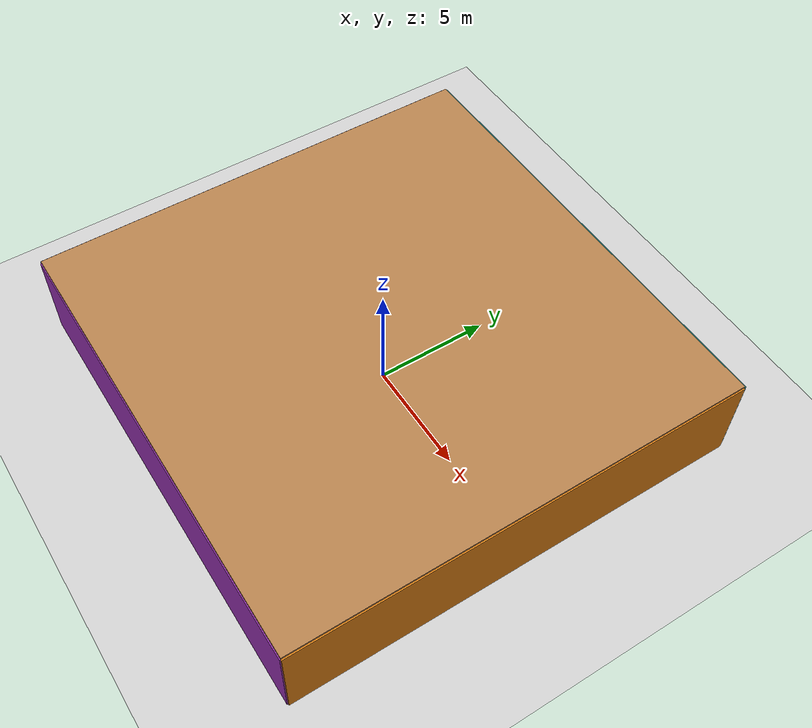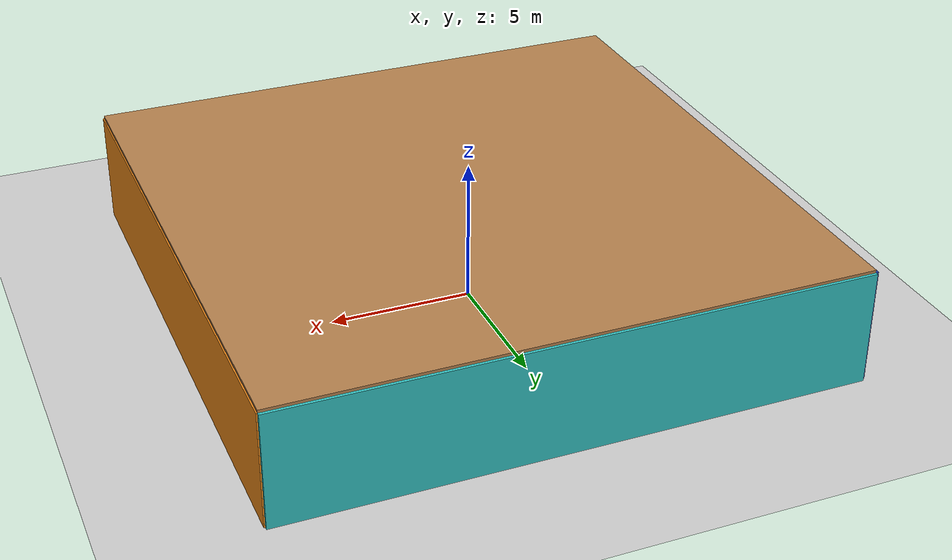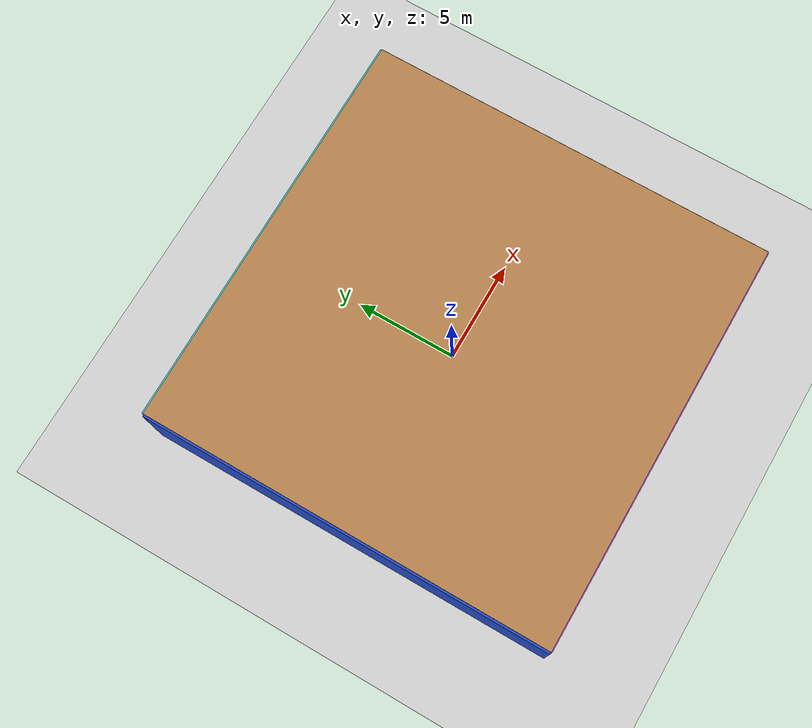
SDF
<sdf version="1.6">
 <world name="default">
  <light name="sun" type="directional">
   <pose>0 0 10 0 -0 0</pose>
   <diffuse>0.8 0.8 0.8 1</diffuse>
   <specular>0.2 0.2 0.2 1</specular>
   <attenuation>
    <range>1000</range>
    <constant>0.9</constant>
    <linear>0.01</linear>
    <quadratic>0.001</quadratic>
   </attenuation>
   <direction>-0.5 0.1 -0.9</direction>
  </light>
  <model name="ground_plane">
   <static>1</static>
   <link name="link">
    <collision name="collision">
     <geometry><plane><normal>0 0 1</normal><size>100 100</size></plane></geometry>
     <surface><friction><ode><mu>100</mu><mu2>50</mu2></ode></friction></surface>
    </collision>
    <visual name="visual">
     <cast_shadows>0</cast_shadows>
     <geometry><plane><normal>0 0 1</normal><size>100 100</size></plane></geometry>
     <material>
      <script><uri>file://media/materials/scripts/gazebo.material</uri><name>Gazebo/Grey</name></script>
     </material>
    </visual>
   </link>
  </model>
  <gravity>0 0 -9.8</gravity>
  <magnetic_field>6e-06 2.3e-05 -4.2e-05</magnetic_field>
  <atmosphere type="adiabatic"/>
  <physics default="0" name="default_physics" type="ode">
   <max_step_size>0.001</max_step_size>
   <real_time_factor>1</real_time_factor>
   <real_time_update_rate>1000</real_time_update_rate>
  </physics>
  <scene><ambient>0.4 0.4 0.4 1</ambient><background>0.7 0.7 0.7 1</background><shadows>1</shadows></scene>
  <spherical_coordinates>
   <surface_model>EARTH_WGS84</surface_model>
   <latitude_deg>0</latitude_deg>
   <longitude_deg>0</longitude_deg>
   <elevation>0</elevation>
   <heading_deg>0</heading_deg>
  </spherical_coordinates>
  <model name="four_walls">
   <static>1</static>
   <link name="Ceiling">
    <collision name="Ceiling_Collision"><geometry><box><size>20 20 0.1</size></box></geometry></collision>
    <visual name="Ceiling_Visual">
     <geometry><box><size>20 20 0.1</size></box></geometry>
     <material>
      <script><uri>file://media/materials/scripts/gazebo.material</uri><name>Gazebo/WoodPallet</name></script>
     </material>
    </visual>
    <pose>0 0 4.05 0 -0 0</pose>
   </link>
   <link name="Wall_South">
    <collision name="Wall_South_Collision">
     <geometry><box><size>20 0.1 4</size></box></geometry>
     <pose>0 0 2 0 -0 0</pose>
    </collision>
    <visual name="Wall_South_Visual">
     <pose>0 0 2 0 -0 0</pose>
     <geometry><box><size>20 0.1 4</size></box></geometry>
     <material>
      <script><uri>file://media/materials/scripts/gazebo.material</uri><name>Gazebo/Purple</name></script>
     </material>
    </visual>
    <velocity_decay><linear>0</linear><angular>0</angular></velocity_decay>
    <pose>0 -10 0 0 -0 0</pose>
   </link>
   <link name="Wall_East">
    <collision name="Wall_21_Collision">
     <geometry><box><size>20 0.1 4</size></box></geometry>
     <pose>0 0 2 0 -0 0</pose>
    </collision>
    <visual name="Wall_21_Visual">
     <pose>0 0 2 0 -0 0</pose>
     <geometry><box><size>20 0.1 4</size></box></geometry>
     <material>
      <script><uri>file://media/materials/scripts/gazebo.material</uri><name>Gazebo/Orange</name></script>
     </material>
    </visual>
    <velocity_decay><linear>0</linear><angular>0</angular></velocity_decay>
    <pose>10 0 0 0 -0 1.5708</pose>
   </link>
   <link name="Wall_North">
    <collision name="Wall_22_Collision">
     <geometry><box><size>20 0.2 4</size></box></geometry>
     <pose>0 0 2 0 -0 0</pose>
    </collision>
    <visual name="Wall_22_Visual">
     <pose>0 0 2 0 -0 0</pose>
     <geometry><box><size>20 0.2 4</size></box></geometry>
     <material>
      <script><uri>file://media/materials/scripts/gazebo.material</uri><name>Gazebo/Turquoise</name></script>
     </material>
    </visual>
    <velocity_decay><linear>0</linear><angular>0</angular></velocity_decay>
    <pose>0 10 0 0 -0 0</pose>
   </link>
   <link name="Wall_West">
    <collision name="Wall_23_Collision">
     <geometry><box><size>20 0.2 4</size></box></geometry>
     <pose>0 0 2 0 -0 0</pose>
    </collision>
    <visual name="Wall_23_Visual">
     <pose>0 0 2 0 -0 0</pose>
     <geometry><box><size>20 0.2 4</size></box></geometry>
     <material>
      <script><uri>file://media/materials/scripts/gazebo.material</uri><name>Gazebo/BlueLaser</name></script>
     </material>
    </visual>
    <velocity_decay><linear>0</linear><angular>0</angular></velocity_decay>
    <pose>-10 0 0 0 0 -1.5708</pose>
   </link>
   <link name="Ground_link">
    <collision name="collision">
     <pose>0 0 0.05 0 -0 0</pose>
     <geometry><box><size>20 20 0.1</size></box></geometry>
    </collision>
    <visual name="visual">
     <pose>0 0 0.05 0 -0 0</pose>
     <geometry><box><size>20 20 0.1</size></box></geometry>
     <material>
      <script><uri>file://media/materials/scripts/gazebo.material</uri><name>Gazebo/Grey</name></script>
     </material>
    </visual>
   </link>
   <pose>0.205996 -0.361878 0 0 -0 0</pose>
  </model>
  <include>
   <uri>model://textured_shapes_sphere</uri>
   <pose>-3.91149009671 5.16953617909 0 0 0 0.0863411250527</pose>
  </include>
  <include>
   <uri>model://textured_shapes_box</uri>
   <pose>-4.17009712525 8.09758665378 0 0 0 1.21327490925</pose>
  </include>
  <include>
   <uri>model://textured_shapes_box</uri>
   <pose>1.81115117467 -3.80428059594 0 0 0 2.25353579195</pose>
  </include>
  <include>
   <uri>model://textured_shapes_box</uri>
   <pose>2.00130972732 5.14467931977 0 0 0 2.17955378845</pose>
  </include>
  <include>
   <uri>model://textured_shapes_cylinder</uri>
   <pose>5.1880506685 -7.12017680698 0 0 0 2.60669469122</pose>
  </include>
  <include>
   <uri>model://textured_shapes_sphere</uri>
   <pose>4.9117711145 -3.92702717959 0 0 0 1.24681422696</pose>
  </include>
  <include>
   <uri>model://textured_shapes_box</uri>
   <pose>8.05011631739 -6.88007552723 0 0 0 0.417150929708</pose>
  </include>
  <include>
   <uri>model://textured_shapes_box</uri>
   <pose>7.95543476987 5.00330177312 0 0 0 0.571126932507</pose>
  </include>
 </world>
</sdf>

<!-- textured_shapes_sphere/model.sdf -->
<sdf version="1.6">
  <model name="textured_shapes">
    <pose>0 0 0.5 0 0 0</pose>
    <link name="sphere">
      <collision name="collision">
        <geometry>
          <sphere>
            <radius>0.5</radius>
          </sphere>
        </geometry>
      </collision>
      <visual name="visual">
        <geometry>
          <sphere>
            <radius>0.5</radius>
          </sphere>
        </geometry>
        <material>
          <script>
            <uri>model://textured_shapes/materials/scripts</uri>
            <uri>model://textured_shapes/materials/textures</uri>
            <name>TexturedShape/Squares</name>
          </script>
        </material>
      </visual>
    </link>
  </model>
</sdf>

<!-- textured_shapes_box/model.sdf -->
<sdf version="1.6">
  <model name="textured_shapes">
    <pose>0 0 0.5 0 0 0</pose>
    <link name="box">
      <pose>0 -1.5 0 0 0 0</pose>
      <collision name="collision">
        <geometry>
          <box>
            <size>1 1 1</size>
          </box>
        </geometry>
      </collision>
      <visual name="visual">
        <geometry>
          <box>
            <size>1 1 1</size>
          </box>
        </geometry>
        <material>
          <script>
            <uri>model://textured_shapes/materials/scripts</uri>
            <uri>model://textured_shapes/materials/textures</uri>
            <name>TexturedShape/Squares</name>
          </script>
        </material>
      </visual>
    </link>
  </model>
</sdf>

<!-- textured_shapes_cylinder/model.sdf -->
<sdf version="1.6">
  <model name="textured_shapes">
    <pose>0 0 0.5 0 0 0</pose>
    <link name="cylinder">
      <pose>0 1.5 0 0 0 0</pose>
      <collision name="collision">
        <geometry>
          <cylinder>
            <radius>0.5</radius>
            <length>1</length>
          </cylinder>
        </geometry>
      </collision>
      <visual name="visual">
        <geometry>
          <cylinder>
            <radius>0.5</radius>
            <length>1</length>
          </cylinder>
        </geometry>
        <material>
          <script>
            <uri>model://textured_shapes/materials/scripts</uri>
            <uri>model://textured_shapes/materials/textures</uri>
            <name>TexturedShape/Squares</name>
          </script>
        </material>
      </visual>
    </link>
  </model>
</sdf>
